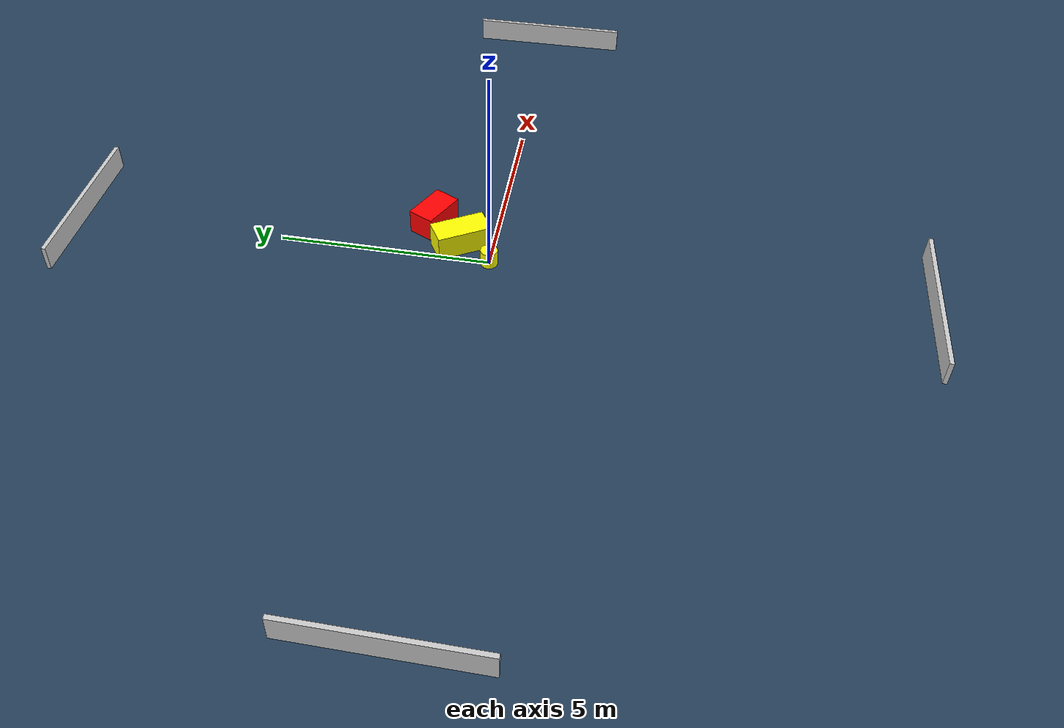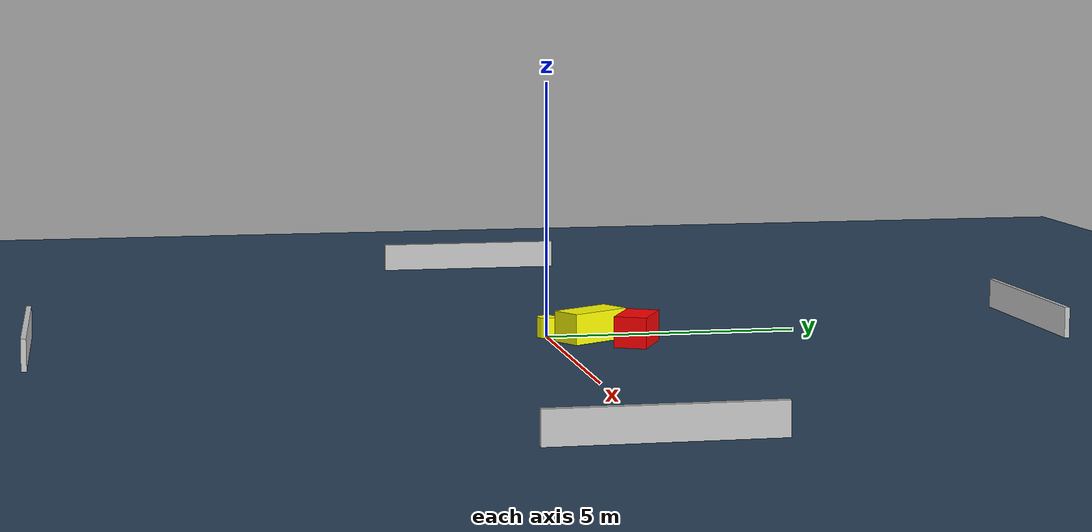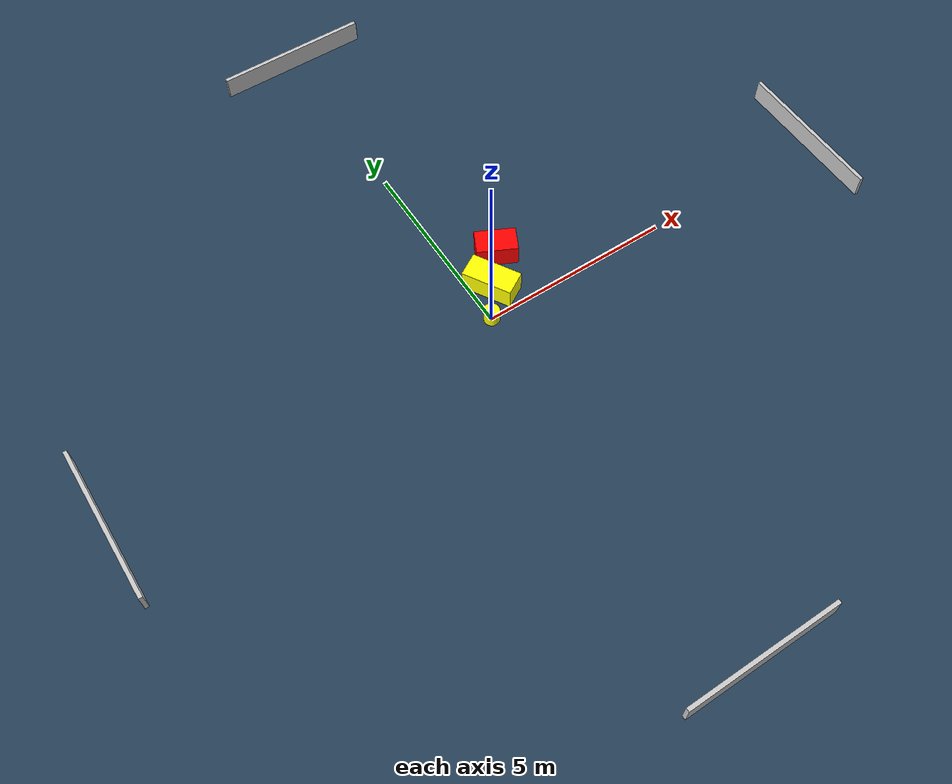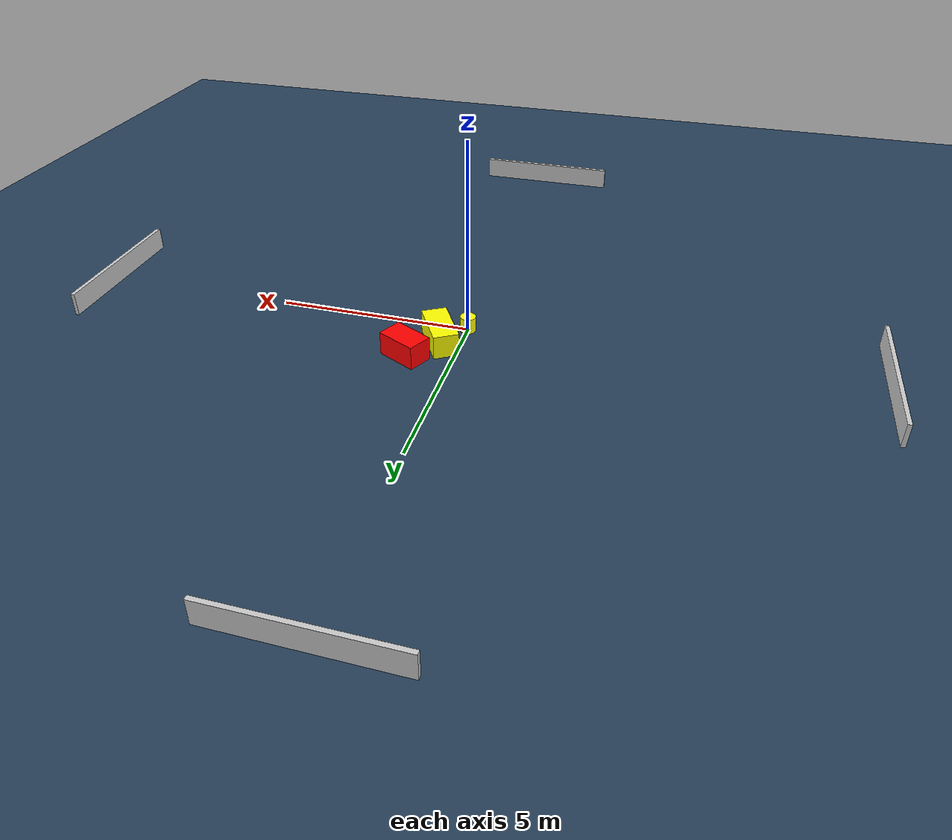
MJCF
<?xml version="1.0" ?>
<mujoco model="generated_environment">
  <option timestep="0.01" integrator="RK4" cone="elliptic"/>
  <default>
    <geom density="1"/>
  </default>
  <asset>
    <texture builtin="gradient" height="3072" name="skybox" rgb1="0.3 0.5 0.7" rgb2="0 0 0" type="skybox" width="512"/>
    <texture builtin="checker" height="300" name="groundplane" rgb1="0.2 0.3 0.4" rgb2="0.1 0.2 0.3" type="2d" width="300"/>
    <material name="groundplane" reflectance="0.2" texrepeat="5 5" texture="groundplane"/>
  </asset>
  <worldbody>
    <light dir="0 0 -1" directional="true" pos="0 0 1.5"/>
    <geom condim="3" friction="0.5 0.005 0.001" material="groundplane" name="floor" pos="0 0 0" size="0 0 0.05" type="plane"/>
    <body name="walls">
      <geom name="wall_1" condim="4" pos="-10.0 0.0 0.3" rgba="0.800000011920929 0.800000011920929 0.800000011920929 1.0" size="0.05 2.0 0.3" type="box"/>
      <geom name="wall_2" condim="4" pos="10.0 0.0 0.3" rgba="0.800000011920929 0.800000011920929 0.800000011920929 1.0" size="0.05 2.0 0.3" type="box"/>
      <geom name="wall_3" condim="4" pos="0.0 -10.0 0.3" rgba="0.800000011920929 0.800000011920929 0.800000011920929 1.0" size="2.0 0.05 0.3" type="box"/>
      <geom name="wall_4" condim="4" pos="0.0 10.0 0.3" rgba="0.800000011920929 0.800000011920929 0.800000011920929 1.0" size="2.0 0.05 0.3" type="box"/>
    </body>
    <body name="robot">
      <joint name="joint_x" type="slide" pos="0 0 0" axis="1 0 0"/>
      <joint name="joint_y" type="slide" pos="0 0 0" axis="0 1 0"/>
      <geom name="robot" type="cylinder" pos="0.0 0.0 0.2" size="0.2 0.2 0.0" mass="5.0" friction="1.0 0.005 0.0001" condim="4" rgba="1.0 1.0 0.0 1.0"/>
    </body>
    <body name="obstacle_1_movable">
      <geom name="obstacle_1_movable" condim="4" pos="0.5044944495433095 0.7674932129720442 0.3" euler="0 0 300.54565229499195" friction="0.0 0.005 0.001" rgba="1.0 1.0 0.0 1.0" size="0.6512795414142585 0.318139753525607 0.3" type="box" mass="0.1"/>
      <joint type="free"/>
    </body>
    <body name="obstacle_2_static">
      <geom name="obstacle_2_static" condim="4" pos="1.1474793372495649 1.5435985419014464 0.3" euler="0 0 333.4856943734563" friction="0.0 0.005 0.001" rgba="1.0 0.0 0.0 1.0" size="0.5227265771485443 0.3180758117391533 0.3" type="box"/>
    </body>
  </worldbody>
  <actuator>
    <motor name="actuator_x" joint="joint_x" gear="1" ctrlrange="-1 1"/>
    <motor name="actuator_y" joint="joint_y" gear="1" ctrlrange="-1 1"/>
  </actuator>
</mujoco>
